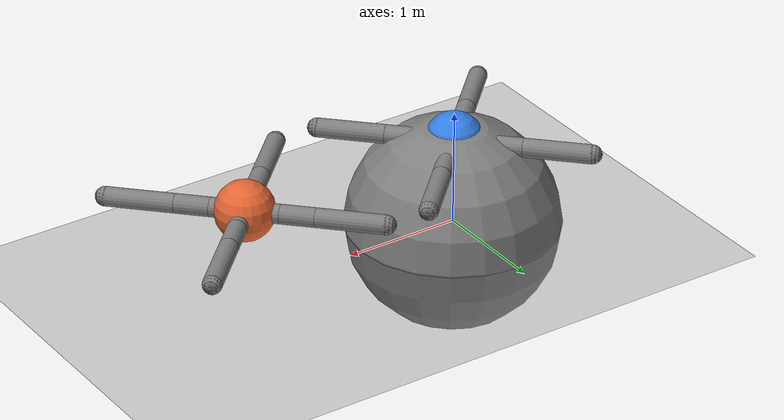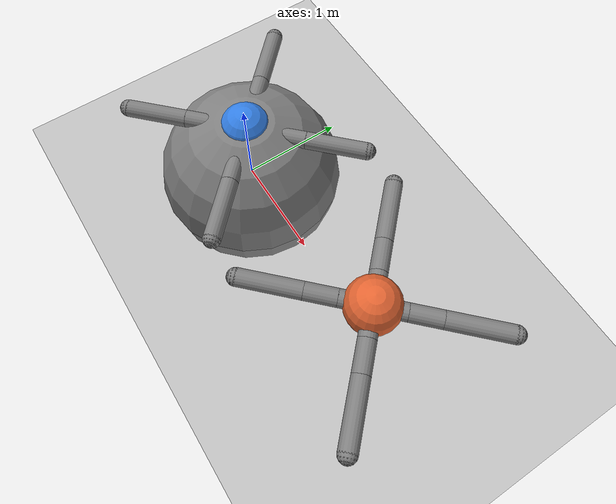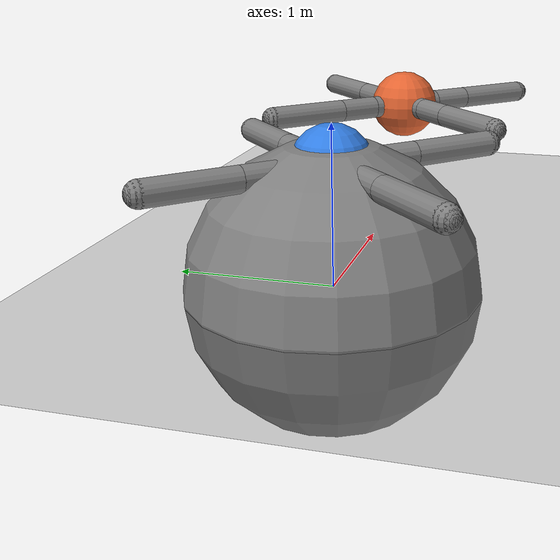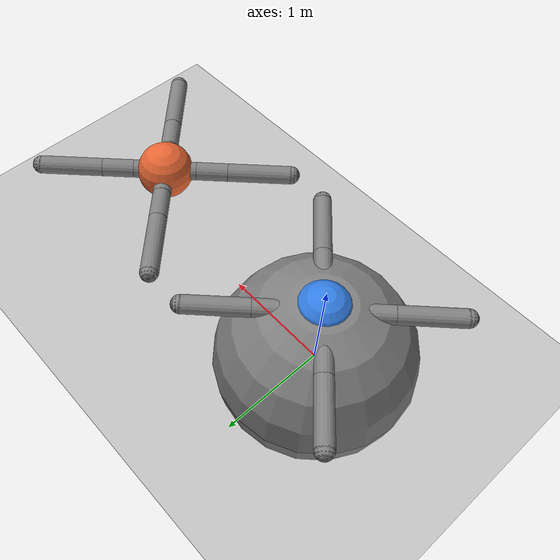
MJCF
<mujoco model="multi_ant">
  <compiler angle="degree" coordinate="local" inertiafromgeom="true"/>
  <option timestep="0.01" iterations="4" />
  <custom>
    <!-- brax custom params -->
    <!-- init_qpos layout: ant_a free joint (7) + ant_a hinges (8) + ant_b free joint (7) + ant_b hinges (8) + target slides (2) = 32 -->
    <numeric data="0 0 0.55 1.0 0.0 0.0 0.0 0.0 1.0 0.0 -1.0 0.0 -1.0 0.0 1.0 2.0 0 0.55 1.0 0.0 0.0 0.0 0.0 1.0 0.0 -1.0 0.0 -1.0 0.0 1.0 0.0 0.0" name="init_qpos"/>
    <numeric data="1000" name="constraint_limit_stiffness"/>
    <numeric data="4000" name="constraint_stiffness"/>
    <numeric data="10" name="constraint_ang_damping"/>
    <numeric data="20" name="constraint_vel_damping"/>
    <numeric data="0.5" name="joint_scale_pos"/>
    <numeric data="0.2" name="joint_scale_ang"/>
    <numeric data="0.0" name="ang_damping"/>
    <numeric data="1" name="spring_mass_scale"/>
    <numeric data="1" name="spring_inertia_scale"/>
    <numeric data="15" name="solver_maxls"/>
  </custom>
  <default>
    <joint armature="1" damping="1" limited="true"/>
    <geom contype="0" conaffinity="0" condim="3" density="5.0" friction="1 0.5 0.5"/>
  </default>
  <asset>
    <texture builtin="gradient" height="100" rgb1="1 1 1" rgb2="0 0 0" type="skybox" width="100"/>
    <texture builtin="flat" height="1278" mark="cross" markrgb="1 1 1" name="texgeom" random="0.01" rgb1="0.8 0.6 0.4" rgb2="0.8 0.6 0.4" type="cube" width="127"/>
    <texture builtin="checker" height="100" name="texplane" rgb1="0 0 0" rgb2="0.8 0.8 0.8" type="2d" width="100"/>
    <material name="MatPlane" reflectance="0.5" shininess="1" specular="1" texrepeat="60 60" texture="texplane"/>
    <material name="geom" texture="texgeom" texuniform="true"/>
  </asset>
  <worldbody>
    <light cutoff="100" diffuse="1 1 1" dir="-0 0 -1.3" directional="true" exponent="1" pos="0 0 1.3" specular=".1 .1 .1"/>
    <geom conaffinity="1" condim="3" material="MatPlane" name="floor" pos="0 0 0" size="300 300 40" type="plane"/>

    <!-- Ant A -->
    <body name="torso_a" pos="0 0 0.75">
      <camera name="track_a" mode="trackcom" pos="0 -3 0.3" xyaxes="1 0 0 0 0 1"/>
      <geom name="torso_geom_a" pos="0 0 0" size="0.25" type="sphere" conaffinity="1" rgba="0.2 0.5 0.9 1"/>
      <joint armature="0" damping="0" limited="false" margin="0.01" name="root_a" pos="0 0 0" type="free"/>
      <body name="front_left_leg_a" pos="0 0 0">
        <geom fromto="0.0 0.0 0.0 0.2 0.2 0.0" name="aux_1_geom_a" size="0.08" type="capsule" conaffinity="1"/>
        <body name="aux_1_a" pos="0.2 0.2 0">
          <joint axis="0 0 1" name="hip_1_a" pos="0.0 0.0 0.0" range="-30 30" type="hinge"/>
          <geom fromto="0.0 0.0 0.0 0.2 0.2 0.0" name="left_leg_geom_a" size="0.08" type="capsule"/>
          <body pos="0.2 0.2 0">
            <joint axis="-1 1 0" name="ankle_1_a" pos="0.0 0.0 0.0" range="30 70" type="hinge"/>
            <geom fromto="0.0 0.0 0.0 0.4 0.4 0.0" name="left_ankle_geom_a" size="0.08" type="capsule"/>
            <geom name="left_foot_geom_a" contype="1" pos="0.4 0.4 0" size="0.08" type="sphere" mass="0" conaffinity="1"/>
          </body>
        </body>
      </body>
      <body name="front_right_leg_a" pos="0 0 0">
        <geom fromto="0.0 0.0 0.0 -0.2 0.2 0.0" name="aux_2_geom_a" size="0.08" type="capsule" conaffinity="1"/>
        <body name="aux_2_a" pos="-0.2 0.2 0">
          <joint axis="0 0 1" name="hip_2_a" pos="0.0 0.0 0.0" range="-30 30" type="hinge"/>
          <geom fromto="0.0 0.0 0.0 -0.2 0.2 0.0" name="right_leg_geom_a" size="0.08" type="capsule"/>
          <body pos="-0.2 0.2 0">
            <joint axis="1 1 0" name="ankle_2_a" pos="0.0 0.0 0.0" range="-70 -30" type="hinge"/>
            <geom fromto="0.0 0.0 0.0 -0.4 0.4 0.0" name="right_ankle_geom_a" size="0.08" type="capsule"/>
            <geom name="right_foot_geom_a" contype="1" pos="-0.4 0.4 0" size="0.08" type="sphere" mass="0" conaffinity="1"/>
          </body>
        </body>
      </body>
      <body name="back_leg_a" pos="0 0 0">
        <geom fromto="0.0 0.0 0.0 -0.2 -0.2 0.0" name="aux_3_geom_a" size="0.08" type="capsule" conaffinity="1"/>
        <body name="aux_3_a" pos="-0.2 -0.2 0">
          <joint axis="0 0 1" name="hip_3_a" pos="0.0 0.0 0.0" range="-30 30" type="hinge"/>
          <geom fromto="0.0 0.0 0.0 -0.2 -0.2 0.0" name="back_leg_geom_a" size="0.08" type="capsule"/>
          <body pos="-0.2 -0.2 0">
            <joint axis="-1 1 0" name="ankle_3_a" pos="0.0 0.0 0.0" range="-70 -30" type="hinge"/>
            <geom fromto="0.0 0.0 0.0 -0.4 -0.4 0.0" name="third_ankle_geom_a" size="0.08" type="capsule"/>
            <geom name="third_foot_geom_a" contype="1" pos="-0.4 -0.4 0" size="0.08" type="sphere" mass="0" conaffinity="1"/>
          </body>
        </body>
      </body>
      <body name="right_back_leg_a" pos="0 0 0">
        <geom fromto="0.0 0.0 0.0 0.2 -0.2 0.0" name="aux_4_geom_a" size="0.08" type="capsule" conaffinity="1"/>
        <body name="aux_4_a" pos="0.2 -0.2 0">
          <joint axis="0 0 1" name="hip_4_a" pos="0.0 0.0 0.0" range="-30 30" type="hinge"/>
          <geom fromto="0.0 0.0 0.0 0.2 -0.2 0.0" name="rightback_leg_geom_a" size="0.08" type="capsule"/>
          <body pos="0.2 -0.2 0">
            <joint axis="1 1 0" name="ankle_4_a" pos="0.0 0.0 0.0" range="30 70" type="hinge"/>
            <geom fromto="0.0 0.0 0.0 0.4 -0.4 0.0" name="fourth_ankle_geom_a" size="0.08" type="capsule"/>
            <geom name="fourth_foot_geom_a" contype="1" pos="0.4 -0.4 0" size="0.08" type="sphere" mass="0" conaffinity="1"/>
          </body>
        </body>
      </body>
    </body>

    <!-- Ant B -->
    <body name="torso_b" pos="2 0 0.75">
      <camera name="track_b" mode="trackcom" pos="0 -3 0.3" xyaxes="1 0 0 0 0 1"/>
      <geom name="torso_geom_b" pos="0 0 0" size="0.25" type="sphere" conaffinity="1" rgba="0.9 0.4 0.2 1"/>
      <joint armature="0" damping="0" limited="false" margin="0.01" name="root_b" pos="0 0 0" type="free"/>
      <body name="front_left_leg_b" pos="0 0 0">
        <geom fromto="0.0 0.0 0.0 0.2 0.2 0.0" name="aux_1_geom_b" size="0.08" type="capsule" conaffinity="1"/>
        <body name="aux_1_b" pos="0.2 0.2 0">
          <joint axis="0 0 1" name="hip_1_b" pos="0.0 0.0 0.0" range="-30 30" type="hinge"/>
          <geom fromto="0.0 0.0 0.0 0.2 0.2 0.0" name="left_leg_geom_b" size="0.08" type="capsule"/>
          <body pos="0.2 0.2 0">
            <joint axis="-1 1 0" name="ankle_1_b" pos="0.0 0.0 0.0" range="30 70" type="hinge"/>
            <geom fromto="0.0 0.0 0.0 0.4 0.4 0.0" name="left_ankle_geom_b" size="0.08" type="capsule"/>
            <geom name="left_foot_geom_b" contype="1" pos="0.4 0.4 0" size="0.08" type="sphere" mass="0" conaffinity="1"/>
          </body>
        </body>
      </body>
      <body name="front_right_leg_b" pos="0 0 0">
        <geom fromto="0.0 0.0 0.0 -0.2 0.2 0.0" name="aux_2_geom_b" size="0.08" type="capsule" conaffinity="1"/>
        <body name="aux_2_b" pos="-0.2 0.2 0">
          <joint axis="0 0 1" name="hip_2_b" pos="0.0 0.0 0.0" range="-30 30" type="hinge"/>
          <geom fromto="0.0 0.0 0.0 -0.2 0.2 0.0" name="right_leg_geom_b" size="0.08" type="capsule"/>
          <body pos="-0.2 0.2 0">
            <joint axis="1 1 0" name="ankle_2_b" pos="0.0 0.0 0.0" range="-70 -30" type="hinge"/>
            <geom fromto="0.0 0.0 0.0 -0.4 0.4 0.0" name="right_ankle_geom_b" size="0.08" type="capsule"/>
            <geom name="right_foot_geom_b" contype="1" pos="-0.4 0.4 0" size="0.08" type="sphere" mass="0" conaffinity="1"/>
          </body>
        </body>
      </body>
      <body name="back_leg_b" pos="0 0 0">
        <geom fromto="0.0 0.0 0.0 -0.2 -0.2 0.0" name="aux_3_geom_b" size="0.08" type="capsule" conaffinity="1"/>
        <body name="aux_3_b" pos="-0.2 -0.2 0">
          <joint axis="0 0 1" name="hip_3_b" pos="0.0 0.0 0.0" range="-30 30" type="hinge"/>
          <geom fromto="0.0 0.0 0.0 -0.2 -0.2 0.0" name="back_leg_geom_b" size="0.08" type="capsule"/>
          <body pos="-0.2 -0.2 0">
            <joint axis="-1 1 0" name="ankle_3_b" pos="0.0 0.0 0.0" range="-70 -30" type="hinge"/>
            <geom fromto="0.0 0.0 0.0 -0.4 -0.4 0.0" name="third_ankle_geom_b" size="0.08" type="capsule"/>
            <geom name="third_foot_geom_b" contype="1" pos="-0.4 -0.4 0" size="0.08" type="sphere" mass="0" conaffinity="1"/>
          </body>
        </body>
      </body>
      <body name="right_back_leg_b" pos="0 0 0">
        <geom fromto="0.0 0.0 0.0 0.2 -0.2 0.0" name="aux_4_geom_b" size="0.08" type="capsule" conaffinity="1"/>
        <body name="aux_4_b" pos="0.2 -0.2 0">
          <joint axis="0 0 1" name="hip_4_b" pos="0.0 0.0 0.0" range="-30 30" type="hinge"/>
          <geom fromto="0.0 0.0 0.0 0.2 -0.2 0.0" name="rightback_leg_geom_b" size="0.08" type="capsule"/>
          <body pos="0.2 -0.2 0">
            <joint axis="1 1 0" name="ankle_4_b" pos="0.0 0.0 0.0" range="30 70" type="hinge"/>
            <geom fromto="0.0 0.0 0.0 0.4 -0.4 0.0" name="fourth_ankle_geom_b" size="0.08" type="capsule"/>
            <geom name="fourth_foot_geom_b" contype="1" pos="0.4 -0.4 0" size="0.08" type="sphere" mass="0" conaffinity="1"/>
          </body>
        </body>
      </body>
    </body>

    <!-- Target -->
    <body name="target" pos="0 0 0.01">
      <!-- The joint `ref` attributes are removed for brax. -->
      <joint armature="0" axis="1 0 0" damping="0" limited="true" name="target_x" pos="0 0 0" range="-100 100" stiffness="0" type="slide"/>
      <joint armature="0" axis="0 1 0" damping="0" limited="true" name="target_y" pos="0 0 0" range="-100 100" stiffness="0" type="slide"/>
      <geom conaffinity="0" contype="0" name="target" pos="0 0 0" size=".9" type="sphere" mass="1.0"/>
    </body>
  </worldbody>
  <actuator>
    <!-- Ant A actuators (action indices 0..7) -->
    <motor ctrllimited="true" ctrlrange="-1.0 1.0" joint="hip_4_a" gear="150"/>
    <motor ctrllimited="true" ctrlrange="-1.0 1.0" joint="ankle_4_a" gear="150"/>
    <motor ctrllimited="true" ctrlrange="-1.0 1.0" joint="hip_1_a" gear="150"/>
    <motor ctrllimited="true" ctrlrange="-1.0 1.0" joint="ankle_1_a" gear="150"/>
    <motor ctrllimited="true" ctrlrange="-1.0 1.0" joint="hip_2_a" gear="150"/>
    <motor ctrllimited="true" ctrlrange="-1.0 1.0" joint="ankle_2_a" gear="150"/>
    <motor ctrllimited="true" ctrlrange="-1.0 1.0" joint="hip_3_a" gear="150"/>
    <motor ctrllimited="true" ctrlrange="-1.0 1.0" joint="ankle_3_a" gear="150"/>
    <!-- Ant B actuators (action indices 8..15) -->
    <motor ctrllimited="true" ctrlrange="-1.0 1.0" joint="hip_4_b" gear="150"/>
    <motor ctrllimited="true" ctrlrange="-1.0 1.0" joint="ankle_4_b" gear="150"/>
    <motor ctrllimited="true" ctrlrange="-1.0 1.0" joint="hip_1_b" gear="150"/>
    <motor ctrllimited="true" ctrlrange="-1.0 1.0" joint="ankle_1_b" gear="150"/>
    <motor ctrllimited="true" ctrlrange="-1.0 1.0" joint="hip_2_b" gear="150"/>
    <motor ctrllimited="true" ctrlrange="-1.0 1.0" joint="ankle_2_b" gear="150"/>
    <motor ctrllimited="true" ctrlrange="-1.0 1.0" joint="hip_3_b" gear="150"/>
    <motor ctrllimited="true" ctrlrange="-1.0 1.0" joint="ankle_3_b" gear="150"/>
  </actuator>
</mujoco>
